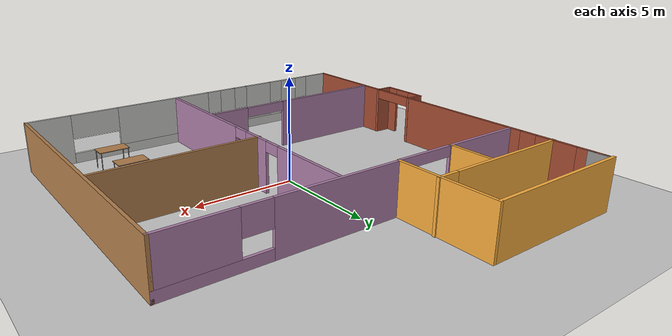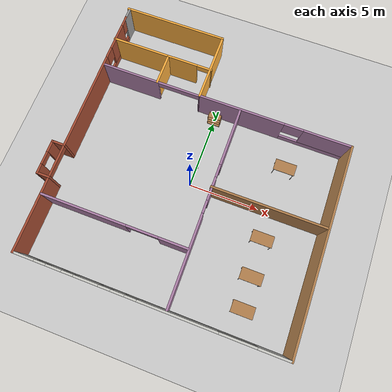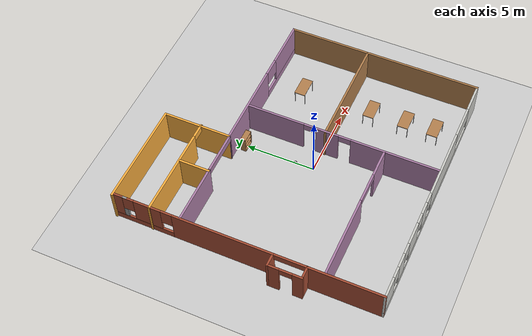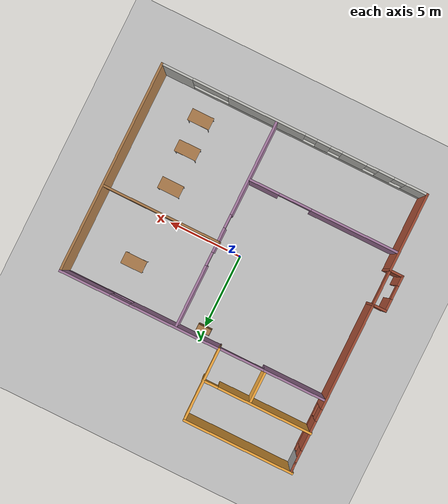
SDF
<sdf version="1.6">
 <world name="default">
  <model name="ground_plane">
   <static>1</static>
   <link name="link">
    <collision name="collision">
     <geometry><plane><normal>0 0 1</normal><size>100 100</size></plane></geometry>
     <surface>
      <contact><collide_bitmask>65535</collide_bitmask></contact>
      <friction><ode><mu>100</mu><mu2>50</mu2></ode></friction>
     </surface>
    </collision>
    <visual name="visual">
     <cast_shadows>0</cast_shadows>
     <geometry><plane><normal>0 0 1</normal><size>100 100</size></plane></geometry>
     <material>
      <script><uri>file://media/materials/scripts/gazebo.material</uri><name>Gazebo/Grey</name></script>
     </material>
    </visual>
   </link>
  </model>
  <model name="apartment-structure">
   <pose>-0.00459 1.0398 0 0 -0 0</pose>
   <link name="Wall_14">
    <collision name="Wall_14_Collision">
     <geometry><box><size>7.5 0.15 2.5</size></box></geometry>
     <pose>0 0 1.25 0 -0 0</pose>
    </collision>
    <visual name="Wall_14_Visual">
     <pose>0 0 1.25 0 -0 0</pose>
     <geometry><box><size>7.5 0.15 2.5</size></box></geometry>
     <material>
      <script><uri>file://media/materials/scripts/gazebo.material</uri><name>Gazebo/Grey</name></script>
      <ambient>0.988235 0.686275 0.243137 1</ambient>
     </material>
     <meta><layer>0</layer></meta>
    </visual>
    <pose>-5.05241 9.475 0 0 -0 0</pose>
   </link>
   <link name="Wall_15">
    <collision name="Wall_15_Collision">
     <geometry><box><size>5 0.15 2.5</size></box></geometry>
     <pose>0 0 1.25 0 -0 0</pose>
    </collision>
    <visual name="Wall_15_Visual">
     <pose>0 0 1.25 0 -0 0</pose>
     <geometry><box><size>5 0.15 2.5</size></box></geometry>
     <material>
      <script><uri>file://media/materials/scripts/gazebo.material</uri><name>Gazebo/Grey</name></script>
      <ambient>0.988235 0.686275 0.243137 1</ambient>
     </material>
     <meta><layer>0</layer></meta>
    </visual>
    <pose>-1.37741 7.05 0 0 -0 -1.5708</pose>
   </link>
   <link name="Wall_16">
    <pose>4.0476 4.625 0 0 -0 0</pose>
    <visual name="Wall_16_Visual_0">
     <pose>-2.39955 0 1.25 0 -0 0</pose>
     <geometry><box><size>6.20089 0.15 2.5</size></box></geometry>
     <material>
      <script><uri>file://media/materials/scripts/gazebo.material</uri><name>Gazebo/Grey</name></script>
      <ambient>0.678431 0.498039 0.658824 1</ambient>
     </material>
     <meta><layer>0</layer></meta>
    </visual>
    <collision name="Wall_16_Collision_0">
     <geometry><box><size>6.20089 0.15 2.5</size></box></geometry>
     <pose>-2.39955 0 1.25 0 -0 0</pose>
    </collision>
    <visual name="Wall_16_Visual_1">
     <pose>3.10045 0 0.25 0 -0 0</pose>
     <geometry><box><size>4.79911 0.15 0.5</size></box></geometry>
     <material>
      <script><uri>file://media/materials/scripts/gazebo.material</uri><name>Gazebo/Grey</name></script>
      <ambient>0.678431 0.498039 0.658824 1</ambient>
     </material>
     <meta><layer>0</layer></meta>
    </visual>
    <collision name="Wall_16_Collision_1">
     <geometry><box><size>4.79911 0.15 0.5</size></box></geometry>
     <pose>3.10045 0 0.25 0 -0 0</pose>
    </collision>
    <visual name="Wall_16_Visual_2">
     <pose>3.77959 0 1.5 0 -0 0</pose>
     <geometry><box><size>3.44082 0.15 2</size></box></geometry>
     <material>
      <script><uri>file://media/materials/scripts/gazebo.material</uri><name>Gazebo/Grey</name></script>
      <ambient>0.678431 0.498039 0.658824 1</ambient>
     </material>
     <meta><layer>0</layer></meta>
    </visual>
    <collision name="Wall_16_Collision_2">
     <geometry><box><size>3.44082 0.15 2</size></box></geometry>
     <pose>3.77959 0 1.5 0 -0 0</pose>
    </collision>
    <visual name="Wall_16_Visual_3">
     <pose>1.38003 0 1.9 0 -0 0</pose>
     <geometry><box><size>1.35829 0.15 1.2</size></box></geometry>
     <material>
      <script><uri>file://media/materials/scripts/gazebo.material</uri><name>Gazebo/Grey</name></script>
      <ambient>0.678431 0.498039 0.658824 1</ambient>
     </material>
     <meta><layer>0</layer></meta>
    </visual>
    <collision name="Wall_16_Collision_3">
     <geometry><box><size>1.35829 0.15 1.2</size></box></geometry>
     <pose>1.38003 0 1.9 0 -0 0</pose>
    </collision>
   </link>
   <link name="Wall_18">
    <collision name="Wall_18_Collision">
     <geometry><box><size>14.25 0.15 2.5</size></box></geometry>
     <pose>0 0 1.25 0 -0 0</pose>
    </collision>
    <visual name="Wall_18_Visual">
     <pose>0 0 1.25 0 -0 0</pose>
     <geometry><box><size>14.25 0.15 2.5</size></box></geometry>
     <material>
      <script><uri>file://media/materials/scripts/gazebo.material</uri><name>Gazebo/Wood</name></script>
      <ambient>1 1 1 1</ambient>
     </material>
     <meta><layer>0</layer></meta>
    </visual>
    <pose>9.47259 -2.425 0 0 -0 -1.5708</pose>
   </link>
   <link name="Wall_19">
    <pose>0.422594 -9.475 0 0 -0 3.14159</pose>
    <visual name="Wall_19_Visual_0">
     <pose>-8.03266 0 1.25 0 -0 0</pose>
     <geometry><box><size>2.18468 0.15 2.5</size></box></geometry>
     <material>
      <script><uri>file://media/materials/scripts/gazebo.material</uri><name>Gazebo/CeilingTiled</name></script>
      <ambient>1 1 1 1</ambient>
     </material>
     <meta><layer>0</layer></meta>
    </visual>
    <collision name="Wall_19_Collision_0">
     <geometry><box><size>2.18468 0.15 2.5</size></box></geometry>
     <pose>-8.03266 0 1.25 0 -0 0</pose>
    </collision>
    <visual name="Wall_19_Visual_1">
     <pose>1.09234 0 0.25 0 -0 0</pose>
     <geometry><box><size>16.0653 0.15 0.5</size></box></geometry>
     <material>
      <script><uri>file://media/materials/scripts/gazebo.material</uri><name>Gazebo/CeilingTiled</name></script>
      <ambient>1 1 1 1</ambient>
     </material>
     <meta><layer>0</layer></meta>
    </visual>
    <collision name="Wall_19_Collision_1">
     <geometry><box><size>16.0653 0.15 0.5</size></box></geometry>
     <pose>1.09234 0 0.25 0 -0 0</pose>
    </collision>
    <visual name="Wall_19_Visual_2">
     <pose>-1.88793 0 1.5 0 -0 0</pose>
     <geometry><box><size>5.24811 0.15 2</size></box></geometry>
     <material>
      <script><uri>file://media/materials/scripts/gazebo.material</uri><name>Gazebo/CeilingTiled</name></script>
      <ambient>1 1 1 1</ambient>
     </material>
     <meta><layer>0</layer></meta>
    </visual>
    <collision name="Wall_19_Collision_2">
     <geometry><box><size>5.24811 0.15 2</size></box></geometry>
     <pose>-1.88793 0 1.5 0 -0 0</pose>
    </collision>
    <visual name="Wall_19_Visual_3">
     <pose>1.99682 0 1.5 0 -0 0</pose>
     <geometry><box><size>0.921385 0.15 2</size></box></geometry>
     <material>
      <script><uri>file://media/materials/scripts/gazebo.material</uri><name>Gazebo/CeilingTiled</name></script>
      <ambient>1 1 1 1</ambient>
     </material>
     <meta><layer>0</layer></meta>
    </visual>
    <collision name="Wall_19_Collision_3">
     <geometry><box><size>0.921385 0.15 2</size></box></geometry>
     <pose>1.99682 0 1.5 0 -0 0</pose>
    </collision>
    <visual name="Wall_19_Visual_4">
     <pose>4.09039 0 1.5 0 -0 0</pose>
     <geometry><box><size>1.66577 0.15 2</size></box></geometry>
     <material>
      <script><uri>file://media/materials/scripts/gazebo.material</uri><name>Gazebo/CeilingTiled</name></script>
      <ambient>1 1 1 1</ambient>
     </material>
     <meta><layer>0</layer></meta>
    </visual>
    <collision name="Wall_19_Collision_4">
     <geometry><box><size>1.66577 0.15 2</size></box></geometry>
     <pose>4.09039 0 1.5 0 -0 0</pose>
    </collision>
    <visual name="Wall_19_Visual_5">
     <pose>6.25375 0 1.5 0 -0 0</pose>
     <geometry><box><size>1.06096 0.15 2</size></box></geometry>
     <material>
      <script><uri>file://media/materials/scripts/gazebo.material</uri><name>Gazebo/CeilingTiled</name></script>
      <ambient>1 1 1 1</ambient>
     </material>
     <meta><layer>0</layer></meta>
    </visual>
    <collision name="Wall_19_Collision_5">
     <geometry><box><size>1.06096 0.15 2</size></box></geometry>
     <pose>6.25375 0 1.5 0 -0 0</pose>
    </collision>
    <visual name="Wall_19_Visual_6">
     <pose>8.35462 0 1.5 0 -0 0</pose>
     <geometry><box><size>1.54077 0.15 2</size></box></geometry>
     <material>
      <script><uri>file://media/materials/scripts/gazebo.material</uri><name>Gazebo/CeilingTiled</name></script>
      <ambient>1 1 1 1</ambient>
     </material>
     <meta><layer>0</layer></meta>
    </visual>
    <collision name="Wall_19_Collision_6">
     <geometry><box><size>1.54077 0.15 2</size></box></geometry>
     <pose>8.35462 0 1.5 0 -0 0</pose>
    </collision>
    <visual name="Wall_19_Visual_7">
     <pose>-5.72615 0 1.9 0 -0 0</pose>
     <geometry><box><size>2.42834 0.15 1.2</size></box></geometry>
     <material>
      <script><uri>file://media/materials/scripts/gazebo.material</uri><name>Gazebo/CeilingTiled</name></script>
      <ambient>1 1 1 1</ambient>
     </material>
     <meta><layer>0</layer></meta>
    </visual>
    <collision name="Wall_19_Collision_7">
     <geometry><box><size>2.42834 0.15 1.2</size></box></geometry>
     <pose>-5.72615 0 1.9 0 -0 0</pose>
    </collision>
    <visual name="Wall_19_Visual_8">
     <pose>1.13612 0 1.9 0 -0 0</pose>
     <geometry><box><size>0.8 0.15 1.2</size></box></geometry>
     <material>
      <script><uri>file://media/materials/scripts/gazebo.material</uri><name>Gazebo/CeilingTiled</name></script>
      <ambient>1 1 1 1</ambient>
     </material>
     <meta><layer>0</layer></meta>
    </visual>
    <collision name="Wall_19_Collision_8">
     <geometry><box><size>0.8 0.15 1.2</size></box></geometry>
     <pose>1.13612 0 1.9 0 -0 0</pose>
    </collision>
    <visual name="Wall_19_Visual_9">
     <pose>2.85751 0 1.9 0 -0 0</pose>
     <geometry><box><size>0.8 0.15 1.2</size></box></geometry>
     <material>
      <script><uri>file://media/materials/scripts/gazebo.material</uri><name>Gazebo/CeilingTiled</name></script>
      <ambient>1 1 1 1</ambient>
     </material>
     <meta><layer>0</layer></meta>
    </visual>
    <collision name="Wall_19_Collision_9">
     <geometry><box><size>0.8 0.15 1.2</size></box></geometry>
     <pose>2.85751 0 1.9 0 -0 0</pose>
    </collision>
    <visual name="Wall_19_Visual_10">
     <pose>5.32328 0 1.9 0 -0 0</pose>
     <geometry><box><size>0.8 0.15 1.2</size></box></geometry>
     <material>
      <script><uri>file://media/materials/scripts/gazebo.material</uri><name>Gazebo/CeilingTiled</name></script>
      <ambient>1 1 1 1</ambient>
     </material>
     <meta><layer>0</layer></meta>
    </visual>
    <collision name="Wall_19_Collision_10">
     <geometry><box><size>0.8 0.15 1.2</size></box></geometry>
     <pose>5.32328 0 1.9 0 -0 0</pose>
    </collision>
    <visual name="Wall_19_Visual_11">
     <pose>7.18423 0 1.9 0 -0 0</pose>
     <geometry><box><size>0.8 0.15 1.2</size></box></geometry>
     <material>
      <script><uri>file://media/materials/scripts/gazebo.material</uri><name>Gazebo/CeilingTiled</name></script>
      <ambient>1 1 1 1</ambient>
     </material>
     <meta><layer>0</layer></meta>
    </visual>
    <collision name="Wall_19_Collision_11">
     <geometry><box><size>0.8 0.15 1.2</size></box></geometry>
     <pose>7.18423 0 1.9 0 -0 0</pose>
    </collision>
   </link>
   <link name="Wall_20">
    <pose>-8.62741 -0.049999 0 0 -0 1.5708</pose>
    <visual name="Wall_20_Visual_0">
     <pose>-6.85379 0 1.25 0 -0 0</pose>
     <geometry><box><size>5.29242 0.15 2.5</size></box></geometry>
     <material>
      <script><uri>file://media/materials/scripts/gazebo.material</uri><name>Gazebo/Bricks</name></script>
      <ambient>0.678431 0.498039 0.658824 1</ambient>
     </material>
     <meta><layer>0</layer></meta>
    </visual>
    <collision name="Wall_20_Collision_0">
     <geometry><box><size>5.29242 0.15 2.5</size></box></geometry>
     <pose>-6.85379 0 1.25 0 -0 0</pose>
    </collision>
    <visual name="Wall_20_Visual_1">
     <pose>1.6293 0 1.25 0 -0 0</pose>
     <geometry><box><size>7.17537 0.15 2.5</size></box></geometry>
     <material>
      <script><uri>file://media/materials/scripts/gazebo.material</uri><name>Gazebo/Bricks</name></script>
      <ambient>0.678431 0.498039 0.658824 1</ambient>
     </material>
     <meta><layer>0</layer></meta>
    </visual>
    <collision name="Wall_20_Collision_1">
     <geometry><box><size>7.17537 0.15 2.5</size></box></geometry>
     <pose>1.6293 0 1.25 0 -0 0</pose>
    </collision>
    <visual name="Wall_20_Visual_2">
     <pose>7.3585 0 0.25 0 -0 0</pose>
     <geometry><box><size>4.28301 0.15 0.5</size></box></geometry>
     <material>
      <script><uri>file://media/materials/scripts/gazebo.material</uri><name>Gazebo/Bricks</name></script>
      <ambient>0.678431 0.498039 0.658824 1</ambient>
     </material>
     <meta><layer>0</layer></meta>
    </visual>
    <collision name="Wall_20_Collision_2">
     <geometry><box><size>4.28301 0.15 0.5</size></box></geometry>
     <pose>7.3585 0 0.25 0 -0 0</pose>
    </collision>
    <visual name="Wall_20_Visual_3">
     <pose>7.01271 0 1.5 0 -0 0</pose>
     <geometry><box><size>1.99144 0.15 2</size></box></geometry>
     <material>
      <script><uri>file://media/materials/scripts/gazebo.material</uri><name>Gazebo/Bricks</name></script>
      <ambient>0.678431 0.498039 0.658824 1</ambient>
     </material>
     <meta><layer>0</layer></meta>
    </visual>
    <collision name="Wall_20_Collision_3">
     <geometry><box><size>1.99144 0.15 2</size></box></geometry>
     <pose>7.01271 0 1.5 0 -0 0</pose>
    </collision>
    <visual name="Wall_20_Visual_4">
     <pose>9.15421 0 1.5 0 -0 0</pose>
     <geometry><box><size>0.691574 0.15 2</size></box></geometry>
     <material>
      <script><uri>file://media/materials/scripts/gazebo.material</uri><name>Gazebo/Bricks</name></script>
      <ambient>0.678431 0.498039 0.658824 1</ambient>
     </material>
     <meta><layer>0</layer></meta>
    </visual>
    <collision name="Wall_20_Collision_4">
     <geometry><box><size>0.691574 0.15 2</size></box></geometry>
     <pose>9.15421 0 1.5 0 -0 0</pose>
    </collision>
    <visual name="Wall_20_Visual_5">
     <pose>5.61699 0 1.9 0 -0 0</pose>
     <geometry><box><size>0.8 0.15 1.2</size></box></geometry>
     <material>
      <script><uri>file://media/materials/scripts/gazebo.material</uri><name>Gazebo/Bricks</name></script>
      <ambient>0.678431 0.498039 0.658824 1</ambient>
     </material>
     <meta><layer>0</layer></meta>
    </visual>
    <collision name="Wall_20_Collision_5">
     <geometry><box><size>0.8 0.15 1.2</size></box></geometry>
     <pose>5.61699 0 1.9 0 -0 0</pose>
    </collision>
    <visual name="Wall_20_Visual_6">
     <pose>8.40843 0 1.9 0 -0 0</pose>
     <geometry><box><size>0.8 0.15 1.2</size></box></geometry>
     <material>
      <script><uri>file://media/materials/scripts/gazebo.material</uri><name>Gazebo/Bricks</name></script>
      <ambient>0.678431 0.498039 0.658824 1</ambient>
     </material>
     <meta><layer>0</layer></meta>
    </visual>
    <collision name="Wall_20_Collision_6">
     <geometry><box><size>0.8 0.15 1.2</size></box></geometry>
     <pose>8.40843 0 1.9 0 -0 0</pose>
    </collision>
    <visual name="Wall_20_Visual_7">
     <pose>-3.08298 0 2.25 0 -0 0</pose>
     <geometry><box><size>2.24919 0.15 0.5</size></box></geometry>
     <material>
      <script><uri>file://media/materials/scripts/gazebo.material</uri><name>Gazebo/Bricks</name></script>
      <ambient>0.678431 0.498039 0.658824 1</ambient>
     </material>
     <meta><layer>0</layer></meta>
    </visual>
    <collision name="Wall_20_Collision_7">
     <geometry><box><size>2.24919 0.15 0.5</size></box></geometry>
     <pose>-3.08298 0 2.25 0 -0 0</pose>
    </collision>
   </link>
   <link name="Wall_21">
    <collision name="Wall_21_Collision">
     <geometry><box><size>1 0.15 2.5</size></box></geometry>
     <pose>0 0 1.25 0 -0 0</pose>
    </collision>
    <visual name="Wall_21_Visual">
     <pose>0 0 1.25 0 -0 0</pose>
     <geometry><box><size>1 0.15 2.5</size></box></geometry>
     <material>
      <script><uri>file://media/materials/scripts/gazebo.material</uri><name>Gazebo/Grey</name></script>
      <ambient>1 1 1 1</ambient>
     </material>
     <meta><layer>0</layer></meta>
    </visual>
    <pose>-8.62741 8.95 0 0 -0 -1.5708</pose>
   </link>
   <link name="Wall_23">
    <pose>-4.99412 6.77661 0 0 -0 0</pose>
    <visual name="Wall_23_Visual_0">
     <pose>-0.552885 0 1.25 0 -0 0</pose>
     <geometry><box><size>6.39423 0.15 2.5</size></box></geometry>
     <material>
      <script><uri>file://media/materials/scripts/gazebo.material</uri><name>Gazebo/Grey</name></script>
      <ambient>0.988235 0.686275 0.243137 1</ambient>
     </material>
     <meta><layer>0</layer></meta>
    </visual>
    <collision name="Wall_23_Collision_0">
     <geometry><box><size>6.39423 0.15 2.5</size></box></geometry>
     <pose>-0.552885 0 1.25 0 -0 0</pose>
    </collision>
    <visual name="Wall_23_Visual_1">
     <pose>3.69364 0 1.25 0 -0 0</pose>
     <geometry><box><size>0.112723 0.15 2.5</size></box></geometry>
     <material>
      <script><uri>file://media/materials/scripts/gazebo.material</uri><name>Gazebo/Grey</name></script>
      <ambient>0.988235 0.686275 0.243137 1</ambient>
     </material>
     <meta><layer>0</layer></meta>
    </visual>
    <collision name="Wall_23_Collision_1">
     <geometry><box><size>0.112723 0.15 2.5</size></box></geometry>
     <pose>3.69364 0 1.25 0 -0 0</pose>
    </collision>
    <visual name="Wall_23_Visual_2">
     <pose>3.14075 0 2.25 0 -0 0</pose>
     <geometry><box><size>0.993048 0.15 0.5</size></box></geometry>
     <material>
      <script><uri>file://media/materials/scripts/gazebo.material</uri><name>Gazebo/Grey</name></script>
      <ambient>0.988235 0.686275 0.243137 1</ambient>
     </material>
     <meta><layer>0</layer></meta>
    </visual>
    <collision name="Wall_23_Collision_2">
     <geometry><box><size>0.993048 0.15 0.5</size></box></geometry>
     <pose>3.14075 0 2.25 0 -0 0</pose>
    </collision>
   </link>
   <link name="Wall_26">
    <pose>-4.98544 4.58357 0 0 -0 3.14159</pose>
    <visual name="Wall_26_Visual_0">
     <pose>-3.60354 0 1.25 0 -0 0</pose>
     <geometry><box><size>0.042923 0.15 2.5</size></box></geometry>
     <material>
      <script><uri>file://media/materials/scripts/gazebo.material</uri><name>Gazebo/Grey</name></script>
      <ambient>0.678431 0.498039 0.658824 1</ambient>
     </material>
     <meta><layer>0</layer></meta>
    </visual>
    <collision name="Wall_26_Collision_0">
     <geometry><box><size>0.042923 0.15 2.5</size></box></geometry>
     <pose>-3.60354 0 1.25 0 -0 0</pose>
    </collision>
    <visual name="Wall_26_Visual_1">
     <pose>1.51825 0 1.25 0 -0 0</pose>
     <geometry><box><size>4.2135 0.15 2.5</size></box></geometry>
     <material>
      <script><uri>file://media/materials/scripts/gazebo.material</uri><name>Gazebo/Grey</name></script>
      <ambient>0.678431 0.498039 0.658824 1</ambient>
     </material>
     <meta><layer>0</layer></meta>
    </visual>
    <collision name="Wall_26_Collision_1">
     <geometry><box><size>4.2135 0.15 2.5</size></box></geometry>
     <pose>1.51825 0 1.25 0 -0 0</pose>
    </collision>
    <visual name="Wall_26_Visual_2">
     <pose>-2.08529 0 2.25 0 -0 0</pose>
     <geometry><box><size>2.99358 0.15 0.5</size></box></geometry>
     <material>
      <script><uri>file://media/materials/scripts/gazebo.material</uri><name>Gazebo/Grey</name></script>
      <ambient>0.678431 0.498039 0.658824 1</ambient>
     </material>
     <meta><layer>0</layer></meta>
    </visual>
    <collision name="Wall_26_Collision_2">
     <geometry><box><size>2.99358 0.15 0.5</size></box></geometry>
     <pose>-2.08529 0 2.25 0 -0 0</pose>
    </collision>
   </link>
   <link name="Wall_28">
    <collision name="Wall_28_Collision">
     <geometry><box><size>2.25 0.15 2.5</size></box></geometry>
     <pose>0 0 1.25 0 -0 0</pose>
    </collision>
    <visual name="Wall_28_Visual">
     <pose>0 0 1.25 0 -0 0</pose>
     <geometry><box><size>2.25 0.15 2.5</size></box></geometry>
     <material>
      <script><uri>file://media/materials/scripts/gazebo.material</uri><name>Gazebo/Grey</name></script>
      <ambient>0.988235 0.686275 0.243137 1</ambient>
     </material>
     <meta><layer>0</layer></meta>
    </visual>
    <pose>-4.52849 5.63357 0 0 -0 -1.5708</pose>
   </link>
   <link name="Wall_30">
    <pose>1.61267 -2.42806 0 0 -0 -1.5708</pose>
    <visual name="Wall_30_Visual_0">
     <pose>-4.90783 0 1.25 0 -0 0</pose>
     <geometry><box><size>4.18434 0.15 2.5</size></box></geometry>
     <material>
      <script><uri>file://media/materials/scripts/gazebo.material</uri><name>Gazebo/Grey</name></script>
      <ambient>0.678431 0.498039 0.658824 1</ambient>
     </material>
     <meta><layer>0</layer></meta>
    </visual>
    <collision name="Wall_30_Collision_0">
     <geometry><box><size>4.18434 0.15 2.5</size></box></geometry>
     <pose>-4.90783 0 1.25 0 -0 0</pose>
    </collision>
    <visual name="Wall_30_Visual_1">
     <pose>-1.08625 0 1.25 0 -0 0</pose>
     <geometry><box><size>1.65881 0.15 2.5</size></box></geometry>
     <material>
      <script><uri>file://media/materials/scripts/gazebo.material</uri><name>Gazebo/Grey</name></script>
      <ambient>0.678431 0.498039 0.658824 1</ambient>
     </material>
     <meta><layer>0</layer></meta>
    </visual>
    <collision name="Wall_30_Collision_1">
     <geometry><box><size>1.65881 0.15 2.5</size></box></geometry>
     <pose>-1.08625 0 1.25 0 -0 0</pose>
    </collision>
    <visual name="Wall_30_Visual_2">
     <pose>3.82158 0 1.25 0 -0 0</pose>
     <geometry><box><size>6.35684 0.15 2.5</size></box></geometry>
     <material>
      <script><uri>file://media/materials/scripts/gazebo.material</uri><name>Gazebo/Grey</name></script>
      <ambient>0.678431 0.498039 0.658824 1</ambient>
     </material>
     <meta><layer>0</layer></meta>
    </visual>
    <collision name="Wall_30_Collision_2">
     <geometry><box><size>6.35684 0.15 2.5</size></box></geometry>
     <pose>3.82158 0 1.25 0 -0 0</pose>
    </collision>
    <visual name="Wall_30_Visual_3">
     <pose>-2.36566 0 2.25 0 -0 0</pose>
     <geometry><box><size>0.9 0.15 0.5</size></box></geometry>
     <material>
      <script><uri>file://media/materials/scripts/gazebo.material</uri><name>Gazebo/Grey</name></script>
      <ambient>0.678431 0.498039 0.658824 1</ambient>
     </material>
     <meta><layer>0</layer></meta>
    </visual>
    <collision name="Wall_30_Collision_3">
     <geometry><box><size>0.9 0.15 0.5</size></box></geometry>
     <pose>-2.36566 0 2.25 0 -0 0</pose>
    </collision>
    <visual name="Wall_30_Visual_4">
     <pose>0.193159 0 2.25 0 -0 0</pose>
     <geometry><box><size>0.9 0.15 0.5</size></box></geometry>
     <material>
      <script><uri>file://media/materials/scripts/gazebo.material</uri><name>Gazebo/Grey</name></script>
      <ambient>0.678431 0.498039 0.658824 1</ambient>
     </material>
     <meta><layer>0</layer></meta>
    </visual>
    <collision name="Wall_30_Collision_4">
     <geometry><box><size>0.9 0.15 0.5</size></box></geometry>
     <pose>0.193159 0 2.25 0 -0 0</pose>
    </collision>
   </link>
   <link name="Wall_32">
    <pose>-3.52607 -5.5057 0 0 -0 0</pose>
    <visual name="Wall_32_Visual_0">
     <pose>-2.13724 0 1.25 0 -0 0</pose>
     <geometry><box><size>5.97551 0.15 2.5</size></box></geometry>
     <material>
      <script><uri>file://media/materials/scripts/gazebo.material</uri><name>Gazebo/Grey</name></script>
      <ambient>0.678431 0.498039 0.658824 1</ambient>
     </material>
     <meta><layer>0</layer></meta>
    </visual>
    <collision name="Wall_32_Collision_0">
     <geometry><box><size>5.97551 0.15 2.5</size></box></geometry>
     <pose>-2.13724 0 1.25 0 -0 0</pose>
    </collision>
    <visual name="Wall_32_Visual_1">
     <pose>4.08909 0 1.25 0 -0 0</pose>
     <geometry><box><size>2.07182 0.15 2.5</size></box></geometry>
     <material>
      <script><uri>file://media/materials/scripts/gazebo.material</uri><name>Gazebo/Grey</name></script>
      <ambient>0.678431 0.498039 0.658824 1</ambient>
     </material>
     <meta><layer>0</layer></meta>
    </visual>
    <collision name="Wall_32_Collision_1">
     <geometry><box><size>2.07182 0.15 2.5</size></box></geometry>
     <pose>4.08909 0 1.25 0 -0 0</pose>
    </collision>
    <visual name="Wall_32_Visual_2">
     <pose>1.95185 0 2.25 0 -0 0</pose>
     <geometry><box><size>2.20267 0.15 0.5</size></box></geometry>
     <material>
      <script><uri>file://media/materials/scripts/gazebo.material</uri><name>Gazebo/Grey</name></script>
      <ambient>0.678431 0.498039 0.658824 1</ambient>
     </material>
     <meta><layer>0</layer></meta>
    </visual>
    <collision name="Wall_32_Collision_2">
     <geometry><box><size>2.20267 0.15 0.5</size></box></geometry>
     <pose>1.95185 0 2.25 0 -0 0</pose>
    </collision>
   </link>
   <link name="Wall_34">
    <collision name="Wall_34_Collision">
     <geometry><box><size>8 0.15 2.5</size></box></geometry>
     <pose>0 0 1.25 0 -0 0</pose>
    </collision>
    <visual name="Wall_34_Visual">
     <pose>0 0 1.25 0 -0 0</pose>
     <geometry><box><size>8 0.15 2.5</size></box></geometry>
     <material>
      <script><uri>file://media/materials/scripts/gazebo.material</uri><name>Gazebo/Wood</name></script>
      <ambient>1 1 1 1</ambient>
     </material>
     <meta><layer>0</layer></meta>
    </visual>
    <pose>5.49114 -1.2255 0 0 -0 0</pose>
   </link>
   <link name="Wall_36">
    <collision name="Wall_36_Collision">
     <geometry><box><size>1 0.15 2.5</size></box></geometry>
     <pose>0 0 1.25 0 -0 0</pose>
    </collision>
    <visual name="Wall_36_Visual">
     <pose>0 0 1.25 0 -0 0</pose>
     <geometry><box><size>1 0.15 2.5</size></box></geometry>
     <material>
      <script><uri>file://media/materials/scripts/gazebo.material</uri><name>Gazebo/Bricks</name></script>
      <ambient>1 1 1 1</ambient>
     </material>
     <meta><layer>0</layer></meta>
    </visual>
    <pose>-9.04759 -1.96988 0 0 -0 3.14159</pose>
   </link>
   <link name="Wall_37">
    <pose>-9.47259 -3.14488 0 0 -0 -1.5708</pose>
    <visual name="Wall_37_Visual_0">
     <pose>-0.809427 0 1.25 0 -0 0</pose>
     <geometry><box><size>0.881146 0.15 2.5</size></box></geometry>
     <material>
      <script><uri>file://media/materials/scripts/gazebo.material</uri><name>Gazebo/Bricks</name></script>
      <ambient>1 1 1 1</ambient>
     </material>
     <meta><layer>0</layer></meta>
    </visual>
    <collision name="Wall_37_Collision_0">
     <geometry><box><size>0.881146 0.15 2.5</size></box></geometry>
     <pose>-0.809427 0 1.25 0 -0 0</pose>
    </collision>
    <visual name="Wall_37_Visual_1">
     <pose>0.890573 0 1.25 0 -0 0</pose>
     <geometry><box><size>0.718854 0.15 2.5</size></box></geometry>
     <material>
      <script><uri>file://media/materials/scripts/gazebo.material</uri><name>Gazebo/Bricks</name></script>
      <ambient>1 1 1 1</ambient>
     </material>
     <meta><layer>0</layer></meta>
    </visual>
    <collision name="Wall_37_Collision_1">
     <geometry><box><size>0.718854 0.15 2.5</size></box></geometry>
     <pose>0.890573 0 1.25 0 -0 0</pose>
    </collision>
    <visual name="Wall_37_Visual_2">
     <pose>0.081146 0 2.25 0 -0 0</pose>
     <geometry><box><size>0.9 0.15 0.5</size></box></geometry>
     <material>
      <script><uri>file://media/materials/scripts/gazebo.material</uri><name>Gazebo/Bricks</name></script>
      <ambient>1 1 1 1</ambient>
     </material>
     <meta><layer>0</layer></meta>
    </visual>
    <collision name="Wall_37_Collision_2">
     <geometry><box><size>0.9 0.15 0.5</size></box></geometry>
     <pose>0.081146 0 2.25 0 -0 0</pose>
    </collision>
   </link>
   <link name="Wall_38">
    <collision name="Wall_38_Collision">
     <geometry><box><size>1 0.15 2.5</size></box></geometry>
     <pose>0 0 1.25 0 -0 0</pose>
    </collision>
    <visual name="Wall_38_Visual">
     <pose>0 0 1.25 0 -0 0</pose>
     <geometry><box><size>1 0.15 2.5</size></box></geometry>
     <material>
      <script><uri>file://media/materials/scripts/gazebo.material</uri><name>Gazebo/Bricks</name></script>
      <ambient>1 1 1 1</ambient>
     </material>
     <meta><layer>0</layer></meta>
    </visual>
    <pose>-9.04759 -4.31988 0 0 -0 0</pose>
   </link>
   <static>1</static>
  </model>
  <model name="table">
   <static>1</static>
   <link name="link">
    <collision name="surface">
     <pose>0 0 1 0 -0 0</pose>
     <geometry><box><size>1.5 0.8 0.03</size></box></geometry>
     <surface><friction><ode><mu>0.6</mu><mu2>0.6</mu2></ode></friction></surface>
    </collision>
    <visual name="visual1">
     <pose>0 0 1 0 -0 0</pose>
     <geometry><box><size>1.5 0.8 0.03</size></box></geometry>
     <material>
      <script><uri>file://media/materials/scripts/gazebo.material</uri><name>Gazebo/Wood</name></script>
     </material>
    </visual>
    <collision name="front_left_leg">
     <pose>0.68 0.38 0.5 0 -0 0</pose>
     <geometry><cylinder><radius>0.02</radius><length>1</length></cylinder></geometry>
    </collision>
    <visual name="front_left_leg">
     <pose>0.68 0.38 0.5 0 -0 0</pose>
     <geometry><cylinder><radius>0.02</radius><length>1</length></cylinder></geometry>
     <material>
      <script><uri>file://media/materials/scripts/gazebo.material</uri><name>Gazebo/Grey</name></script>
     </material>
    </visual>
    <collision name="front_right_leg">
     <pose>0.68 -0.38 0.5 0 -0 0</pose>
     <geometry><cylinder><radius>0.02</radius><length>1</length></cylinder></geometry>
    </collision>
    <visual name="front_right_leg">
     <pose>0.68 -0.38 0.5 0 -0 0</pose>
     <geometry><cylinder><radius>0.02</radius><length>1</length></cylinder></geometry>
     <material>
      <script><uri>file://media/materials/scripts/gazebo.material</uri><name>Gazebo/Grey</name></script>
     </material>
    </visual>
    <collision name="back_right_leg">
     <pose>-0.68 -0.38 0.5 0 -0 0</pose>
     <geometry><cylinder><radius>0.02</radius><length>1</length></cylinder></geometry>
    </collision>
    <visual name="back_right_leg">
     <pose>-0.68 -0.38 0.5 0 -0 0</pose>
     <geometry><cylinder><radius>0.02</radius><length>1</length></cylinder></geometry>
     <material>
      <script><uri>file://media/materials/scripts/gazebo.material</uri><name>Gazebo/Grey</name></script>
     </material>
    </visual>
    <collision name="back_left_leg">
     <pose>-0.68 0.38 0.5 0 -0 0</pose>
     <geometry><cylinder><radius>0.02</radius><length>1</length></cylinder></geometry>
    </collision>
    <visual name="back_left_leg">
     <pose>-0.68 0.38 0.5 0 -0 0</pose>
     <geometry><cylinder><radius>0.02</radius><length>1</length></cylinder></geometry>
     <material>
      <script><uri>file://media/materials/scripts/gazebo.material</uri><name>Gazebo/Grey</name></script>
     </material>
    </visual>
   </link>
   <pose>5.83056 3.2809 0 0 -0 0</pose>
  </model>
  <model name="table_clone">
   <static>1</static>
   <link name="link">
    <collision name="surface">
     <pose>0 0 1 0 -0 0</pose>
     <geometry><box><size>1.5 0.8 0.03</size></box></geometry>
     <surface><friction><ode><mu>0.6</mu><mu2>0.6</mu2></ode></friction></surface>
    </collision>
    <visual name="visual1">
     <pose>0 0 1 0 -0 0</pose>
     <geometry><box><size>1.5 0.8 0.03</size></box></geometry>
     <material>
      <script><uri>file://media/materials/scripts/gazebo.material</uri><name>Gazebo/Wood</name></script>
     </material>
    </visual>
    <collision name="front_left_leg">
     <pose>0.68 0.38 0.5 0 -0 0</pose>
     <geometry><cylinder><radius>0.02</radius><length>1</length></cylinder></geometry>
    </collision>
    <visual name="front_left_leg">
     <pose>0.68 0.38 0.5 0 -0 0</pose>
     <geometry><cylinder><radius>0.02</radius><length>1</length></cylinder></geometry>
     <material>
      <script><uri>file://media/materials/scripts/gazebo.material</uri><name>Gazebo/Grey</name></script>
     </material>
    </visual>
    <collision name="front_right_leg">
     <pose>0.68 -0.38 0.5 0 -0 0</pose>
     <geometry><cylinder><radius>0.02</radius><length>1</length></cylinder></geometry>
    </collision>
    <visual name="front_right_leg">
     <pose>0.68 -0.38 0.5 0 -0 0</pose>
     <geometry><cylinder><radius>0.02</radius><length>1</length></cylinder></geometry>
     <material>
      <script><uri>file://media/materials/scripts/gazebo.material</uri><name>Gazebo/Grey</name></script>
     </material>
    </visual>
    <collision name="back_right_leg">
     <pose>-0.68 -0.38 0.5 0 -0 0</pose>
     <geometry><cylinder><radius>0.02</radius><length>1</length></cylinder></geometry>
    </collision>
    <visual name="back_right_leg">
     <pose>-0.68 -0.38 0.5 0 -0 0</pose>
     <geometry><cylinder><radius>0.02</radius><length>1</length></cylinder></geometry>
     <material>
      <script><uri>file://media/materials/scripts/gazebo.material</uri><name>Gazebo/Grey</name></script>
     </material>
    </visual>
    <collision name="back_left_leg">
     <pose>-0.68 0.38 0.5 0 -0 0</pose>
     <geometry><cylinder><radius>0.02</radius><length>1</length></cylinder></geometry>
    </collision>
    <visual name="back_left_leg">
     <pose>-0.68 0.38 0.5 0 -0 0</pose>
     <geometry><cylinder><radius>0.02</radius><length>1</length></cylinder></geometry>
     <material>
      <script><uri>file://media/materials/scripts/gazebo.material</uri><name>Gazebo/Grey</name></script>
     </material>
    </visual>
   </link>
   <pose>5.84228 -1.97763 0 0 -0 0</pose>
  </model>
  <model name="table_clone_0">
   <static>1</static>
   <link name="link">
    <collision name="surface">
     <pose>0 0 1 0 -0 0</pose>
     <geometry><box><size>1.5 0.8 0.03</size></box></geometry>
     <surface><friction><ode><mu>0.6</mu><mu2>0.6</mu2></ode></friction></surface>
    </collision>
    <visual name="visual1">
     <pose>0 0 1 0 -0 0</pose>
     <geometry><box><size>1.5 0.8 0.03</size></box></geometry>
     <material>
      <script><uri>file://media/materials/scripts/gazebo.material</uri><name>Gazebo/Wood</name></script>
     </material>
    </visual>
    <collision name="front_left_leg">
     <pose>0.68 0.38 0.5 0 -0 0</pose>
     <geometry><cylinder><radius>0.02</radius><length>1</length></cylinder></geometry>
    </collision>
    <visual name="front_left_leg">
     <pose>0.68 0.38 0.5 0 -0 0</pose>
     <geometry><cylinder><radius>0.02</radius><length>1</length></cylinder></geometry>
     <material>
      <script><uri>file://media/materials/scripts/gazebo.material</uri><name>Gazebo/Grey</name></script>
     </material>
    </visual>
    <collision name="front_right_leg">
     <pose>0.68 -0.38 0.5 0 -0 0</pose>
     <geometry><cylinder><radius>0.02</radius><length>1</length></cylinder></geometry>
    </collision>
    <visual name="front_right_leg">
     <pose>0.68 -0.38 0.5 0 -0 0</pose>
     <geometry><cylinder><radius>0.02</radius><length>1</length></cylinder></geometry>
     <material>
      <script><uri>file://media/materials/scripts/gazebo.material</uri><name>Gazebo/Grey</name></script>
     </material>
    </visual>
    <collision name="back_right_leg">
     <pose>-0.68 -0.38 0.5 0 -0 0</pose>
     <geometry><cylinder><radius>0.02</radius><length>1</length></cylinder></geometry>
    </collision>
    <visual name="back_right_leg">
     <pose>-0.68 -0.38 0.5 0 -0 0</pose>
     <geometry><cylinder><radius>0.02</radius><length>1</length></cylinder></geometry>
     <material>
      <script><uri>file://media/materials/scripts/gazebo.material</uri><name>Gazebo/Grey</name></script>
     </material>
    </visual>
    <collision name="back_left_leg">
     <pose>-0.68 0.38 0.5 0 -0 0</pose>
     <geometry><cylinder><radius>0.02</radius><length>1</length></cylinder></geometry>
    </collision>
    <visual name="back_left_leg">
     <pose>-0.68 0.38 0.5 0 -0 0</pose>
     <geometry><cylinder><radius>0.02</radius><length>1</length></cylinder></geometry>
     <material>
      <script><uri>file://media/materials/scripts/gazebo.material</uri><name>Gazebo/Grey</name></script>
     </material>
    </visual>
   </link>
   <pose>5.92314 -4.53584 0 0 -0 0</pose>
  </model>
  <model name="table_clone_1">
   <static>1</static>
   <link name="link">
    <collision name="surface">
     <pose>0 0 1 0 -0 0</pose>
     <geometry><box><size>1.5 0.8 0.03</size></box></geometry>
     <surface><friction><ode><mu>0.6</mu><mu2>0.6</mu2></ode></friction></surface>
    </collision>
    <visual name="visual1">
     <pose>0 0 1 0 -0 0</pose>
     <geometry><box><size>1.5 0.8 0.03</size></box></geometry>
     <material>
      <script><uri>file://media/materials/scripts/gazebo.material</uri><name>Gazebo/Wood</name></script>
     </material>
    </visual>
    <collision name="front_left_leg">
     <pose>0.68 0.38 0.5 0 -0 0</pose>
     <geometry><cylinder><radius>0.02</radius><length>1</length></cylinder></geometry>
    </collision>
    <visual name="front_left_leg">
     <pose>0.68 0.38 0.5 0 -0 0</pose>
     <geometry><cylinder><radius>0.02</radius><length>1</length></cylinder></geometry>
     <material>
      <script><uri>file://media/materials/scripts/gazebo.material</uri><name>Gazebo/Grey</name></script>
     </material>
    </visual>
    <collision name="front_right_leg">
     <pose>0.68 -0.38 0.5 0 -0 0</pose>
     <geometry><cylinder><radius>0.02</radius><length>1</length></cylinder></geometry>
    </collision>
    <visual name="front_right_leg">
     <pose>0.68 -0.38 0.5 0 -0 0</pose>
     <geometry><cylinder><radius>0.02</radius><length>1</length></cylinder></geometry>
     <material>
      <script><uri>file://media/materials/scripts/gazebo.material</uri><name>Gazebo/Grey</name></script>
     </material>
    </visual>
    <collision name="back_right_leg">
     <pose>-0.68 -0.38 0.5 0 -0 0</pose>
     <geometry><cylinder><radius>0.02</radius><length>1</length></cylinder></geometry>
    </collision>
    <visual name="back_right_leg">
     <pose>-0.68 -0.38 0.5 0 -0 0</pose>
     <geometry><cylinder><radius>0.02</radius><length>1</length></cylinder></geometry>
     <material>
      <script><uri>file://media/materials/scripts/gazebo.material</uri><name>Gazebo/Grey</name></script>
     </material>
    </visual>
    <collision name="back_left_leg">
     <pose>-0.68 0.38 0.5 0 -0 0</pose>
     <geometry><cylinder><radius>0.02</radius><length>1</length></cylinder></geometry>
    </collision>
    <visual name="back_left_leg">
     <pose>-0.68 0.38 0.5 0 -0 0</pose>
     <geometry><cylinder><radius>0.02</radius><length>1</length></cylinder></geometry>
     <material>
      <script><uri>file://media/materials/scripts/gazebo.material</uri><name>Gazebo/Grey</name></script>
     </material>
    </visual>
   </link>
   <pose>6.03925 -6.65752 0 0 -0 0</pose>
  </model>
  <model name="bookshelf_0">
   <static>1</static>
   <link name="link">
    <inertial><mass>1</mass></inertial>
    <collision name="back">
     <pose>0 0.005 0.6 0 -0 0</pose>
     <geometry><box><size>0.9 0.01 1.2</size></box></geometry>
    </collision>
    <visual name="visual1">
     <pose>0 0.005 0.6 0 -0 0</pose>
     <geometry><box><size>0.9 0.01 1.2</size></box></geometry>
     <material>
      <script><uri>file://media/materials/scripts/gazebo.material</uri><name>Gazebo/Wood</name></script>
     </material>
    </visual>
    <collision name="left_side">
     <pose>0.45 -0.195 0.6 0 -0 0</pose>
     <geometry><box><size>0.02 0.4 1.2</size></box></geometry>
    </collision>
    <visual name="visual2">
     <pose>0.45 -0.195 0.6 0 -0 0</pose>
     <geometry><box><size>0.02 0.4 1.2</size></box></geometry>
     <material>
      <script><uri>file://media/materials/scripts/gazebo.material</uri><name>Gazebo/Wood</name></script>
     </material>
    </visual>
    <collision name="right_side">
     <pose>-0.45 -0.195 0.6 0 -0 0</pose>
     <geometry><box><size>0.02 0.4 1.2</size></box></geometry>
    </collision>
    <visual name="visual3">
     <pose>-0.45 -0.195 0.6 0 -0 0</pose>
     <geometry><box><size>0.02 0.4 1.2</size></box></geometry>
     <material>
      <script><uri>file://media/materials/scripts/gazebo.material</uri><name>Gazebo/Wood</name></script>
     </material>
    </visual>
    <collision name="bottom">
     <pose>0 -0.195 0.03 0 -0 0</pose>
     <geometry><box><size>0.88 0.4 0.06</size></box></geometry>
    </collision>
    <visual name="visual4">
     <pose>0 -0.195 0.03 0 -0 0</pose>
     <geometry><box><size>0.88 0.4 0.06</size></box></geometry>
     <material>
      <script><uri>file://media/materials/scripts/gazebo.material</uri><name>Gazebo/Wood</name></script>
     </material>
    </visual>
    <collision name="top">
     <pose>0 -0.195 1.19 0 -0 0</pose>
     <geometry><box><size>0.88 0.4 0.02</size></box></geometry>
    </collision>
    <visual name="visual5">
     <pose>0 -0.195 1.19 0 -0 0</pose>
     <geometry><box><size>0.88 0.4 0.02</size></box></geometry>
     <material>
      <script><uri>file://media/materials/scripts/gazebo.material</uri><name>Gazebo/Wood</name></script>
     </material>
    </visual>
    <collision name="low_shelf">
     <pose>0 -0.195 0.43 0 -0 0</pose>
     <geometry><box><size>0.88 0.4 0.02</size></box></geometry>
    </collision>
    <visual name="visual6">
     <pose>0 -0.195 0.43 0 -0 0</pose>
     <geometry><box><size>0.88 0.4 0.02</size></box></geometry>
     <material>
      <script><uri>file://media/materials/scripts/gazebo.material</uri><name>Gazebo/Wood</name></script>
     </material>
    </visual>
    <collision name="high_shelf">
     <pose>0 -0.195 0.8 0 -0 0</pose>
     <geometry><box><size>0.88 0.4 0.02</size></box></geometry>
    </collision>
    <visual name="visual7">
     <pose>0 -0.195 0.8 0 -0 0</pose>
     <geometry><box><size>0.88 0.4 0.02</size></box></geometry>
     <material>
      <script><uri>file://media/materials/scripts/gazebo.material</uri><name>Gazebo/Wood</name></script>
     </material>
    </visual>
   </link>
   <pose>0.004732 5.3289 0 0 -0 0</pose>
  </model>
  <model name="white_ball">
   <link name="link">
    <inertial>
     <mass>1</mass>
     <inertia><ixx>0.1</ixx><ixy>0</ixy><ixz>0</ixz><iyy>0.1</iyy><iyz>0</iyz><izz>0.1</izz></inertia>
    </inertial>
    <visual name="visual">
     <geometry><sphere><radius>0.1</radius></sphere></geometry>
     <material>
      <script><name>Gazebo/Grey</name><uri>file://media/materials/scripts/gazebo.material</uri></script>
      <ambient>1 1 1 1</ambient>
      <diffuse>1 1 1 1</diffuse>
      <specular>1 1 1 1</specular>
      <emissive>1 1 1 1</emissive>
      <shader type="vertex"><normal_map>__default__</normal_map></shader>
     </material>
    </visual>
    <collision name="collision">
     <geometry><sphere><radius>0.1</radius></sphere></geometry>
     <surface>
      <friction>
       <ode><mu>1</mu><mu2>1</mu2><fdir1>0 0 0</fdir1><slip1>0</slip1><slip2>0</slip2></ode>
       <torsional>
        <coefficient>1</coefficient>
        <patch_radius>0</patch_radius>
        <surface_radius>0</surface_radius>
        <use_patch_radius>1</use_patch_radius>
        <ode><slip>0</slip></ode>
       </torsional>
      </friction>
      <bounce><restitution_coefficient>0</restitution_coefficient><threshold>1e+06</threshold></bounce>
      <contact>
       <collide_without_contact>0</collide_without_contact>
       <collide_without_contact_bitmask>1</collide_without_contact_bitmask>
       <collide_bitmask>1</collide_bitmask>
       <ode>
        <soft_cfm>0</soft_cfm>
        <soft_erp>0.2</soft_erp>
        <kp>1e+13</kp>
        <kd>1</kd>
        <max_vel>0.01</max_vel>
        <min_depth>0</min_depth>
       </ode>
       <bullet>
        <split_impulse>1</split_impulse>
        <split_impulse_penetration_threshold>-0.01</split_impulse_penetration_threshold>
        <soft_cfm>0</soft_cfm>
        <soft_erp>0.2</soft_erp>
        <kp>1e+13</kp>
        <kd>1</kd>
       </bullet>
      </contact>
     </surface>
    </collision>
   </link>
   <static>0</static>
   <pose>0.021981 1.36091 0.1 0 -0 0</pose>
  </model>
 </world>
</sdf>
